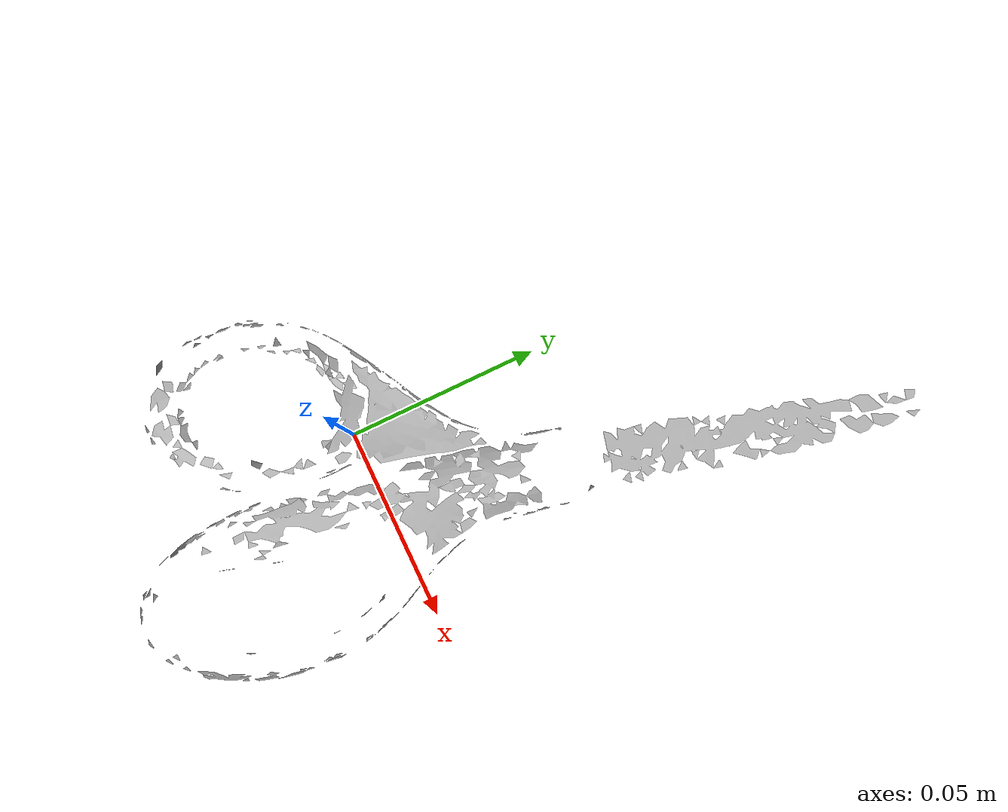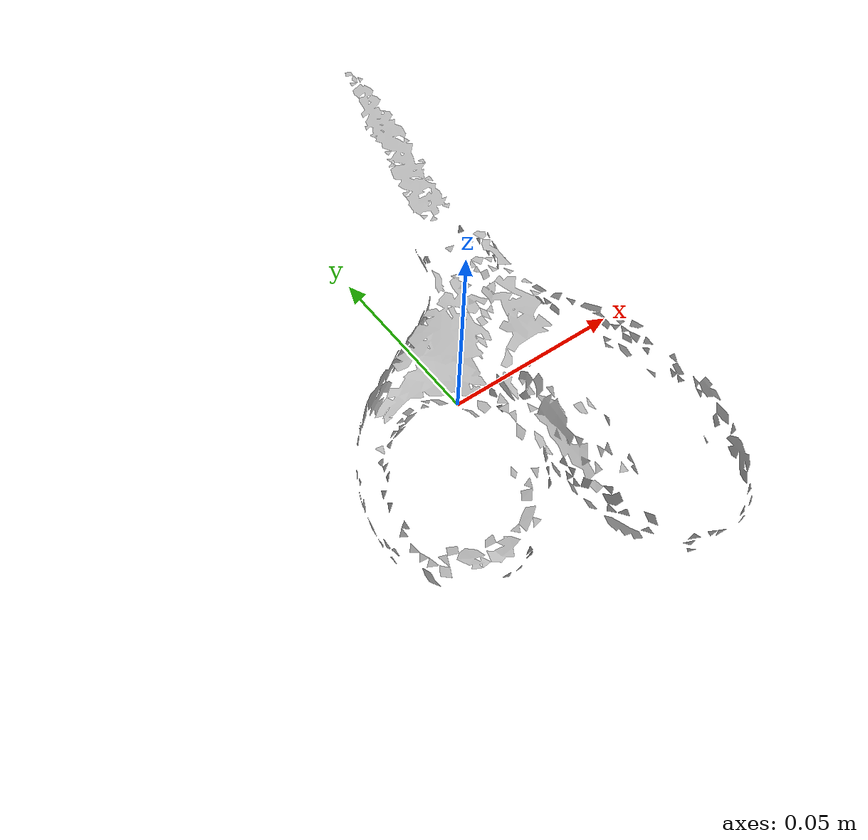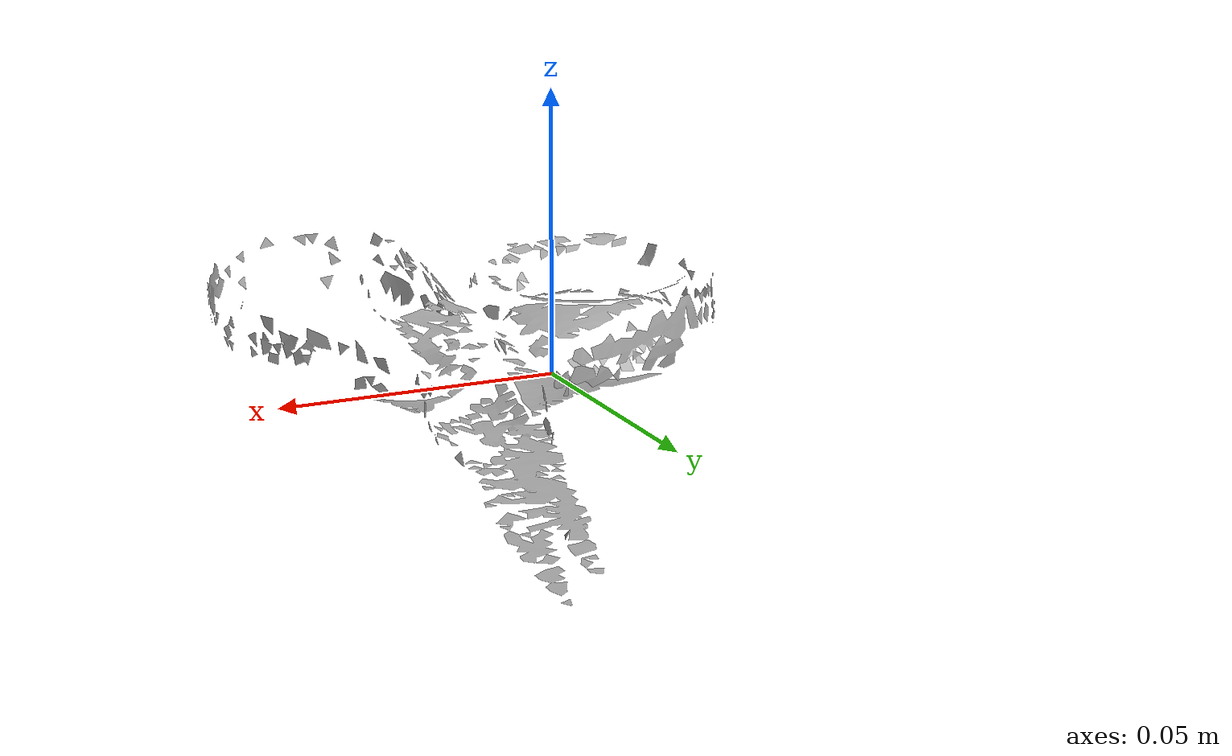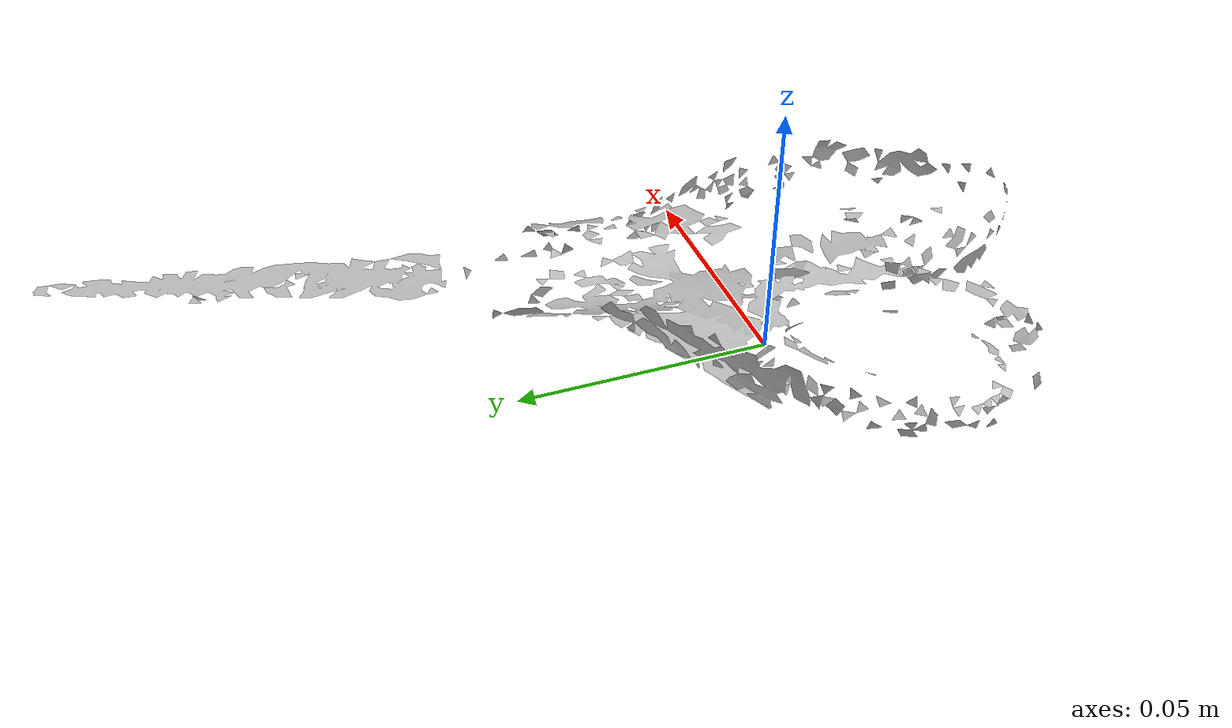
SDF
<?xml version="1.0" ?>
<sdf version="1.4">
  <model name='ycb_037_scissors'>
    <link name='body'>
      <inertial>
        <mass>0.082</mass>
        <pose>0.014591521705 0.0031621363902 0.00740067431642 0 0 0</pose>
        <inertia>
          <ixx>0.000115606742285</ixx>
          <ixy>-2.75484253168e-05</ixy>
          <ixz>-4.74821989584e-07</ixz>
          <iyy>3.85017848178e-05</iyy>
          <iyz>-5.17757427406e-07</iyz>
          <izz>0.000152325713996</izz>
        </inertia>
      </inertial>
      <visual name='ycb_037_scissors_visual'>
        <pose>0 0 0 0 0 0</pose>
        <geometry>
          <mesh>
            <uri>model://ycb_037_scissors/meshes/textured.dae</uri>
          </mesh>
        </geometry>
      </visual>
      <collision name='ycb_037_scissors_collision'>
        <pose>0 0 0 0 0 0</pose>
        <geometry>
          <mesh>
            <uri>model://ycb_037_scissors/meshes/nontextured.stl</uri>
          </mesh>
        </geometry>
        <max_contacts>10</max_contacts>
      </collision>
    </link>
  </model>
</sdf>
